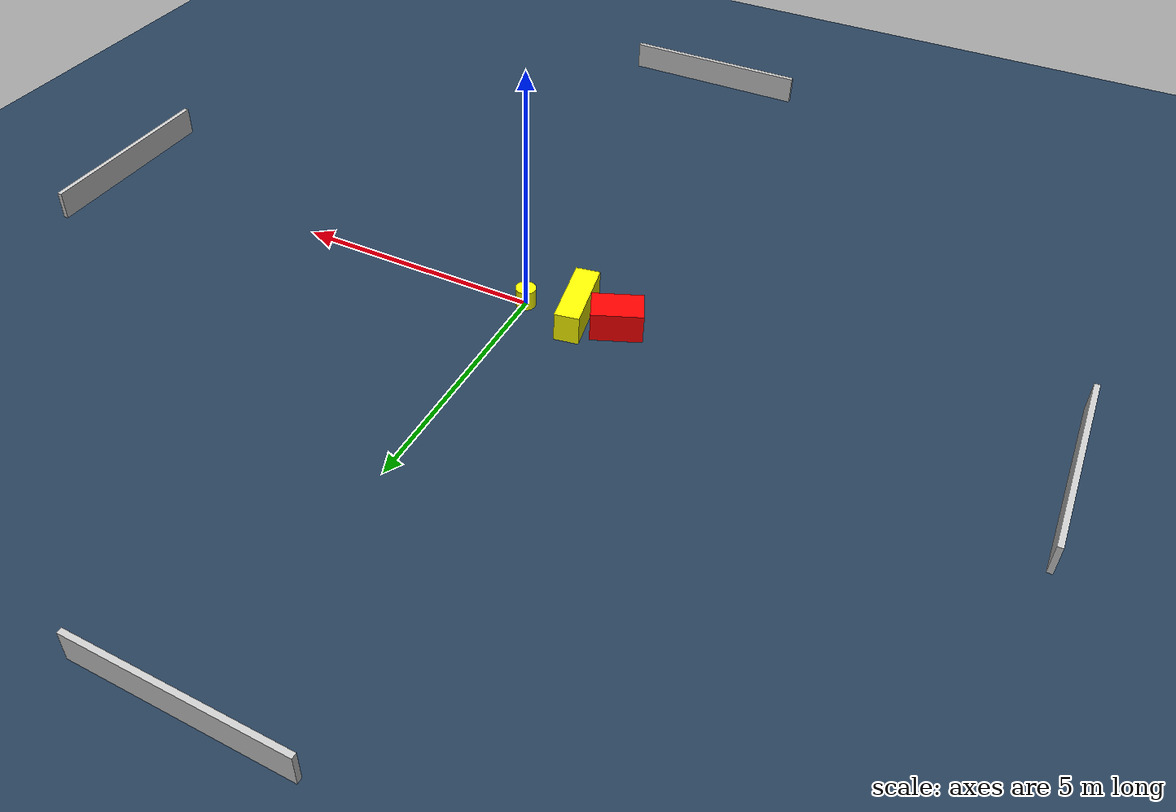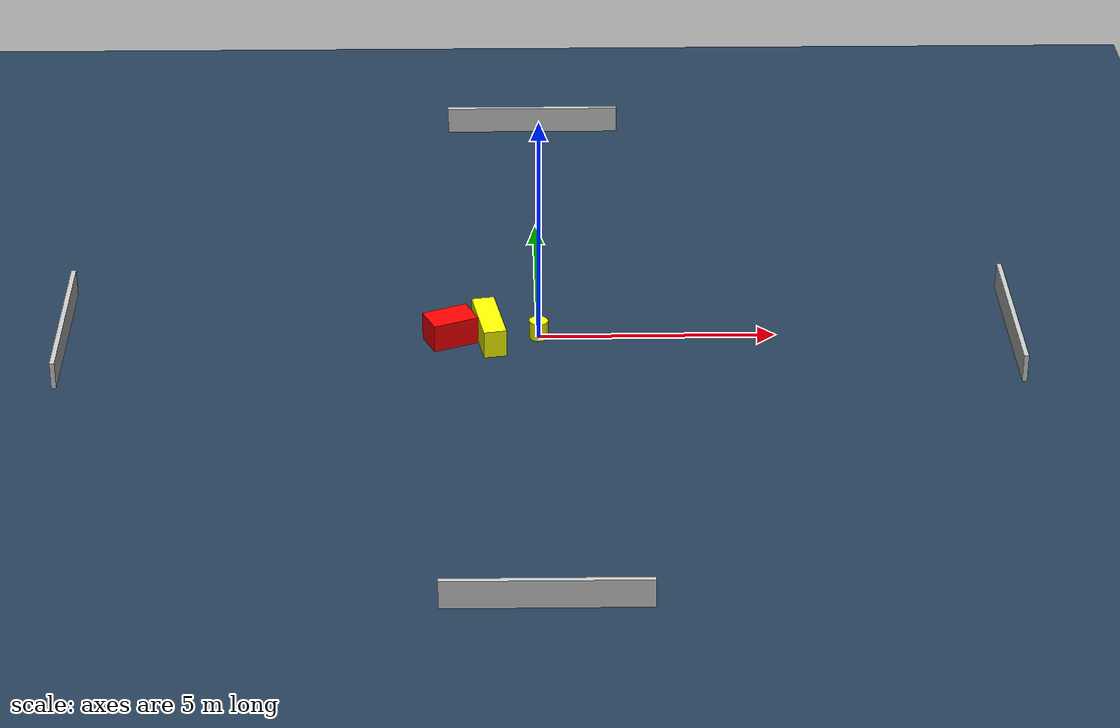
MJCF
<?xml version="1.0" ?>
<mujoco model="generated_environment">
  <option timestep="0.01" integrator="RK4" cone="elliptic"/>
  <default>
    <geom density="1"/>
  </default>
  <asset>
    <texture builtin="gradient" height="3072" name="skybox" rgb1="0.3 0.5 0.7" rgb2="0 0 0" type="skybox" width="512"/>
    <texture builtin="checker" height="300" name="groundplane" rgb1="0.2 0.3 0.4" rgb2="0.1 0.2 0.3" type="2d" width="300"/>
    <material name="groundplane" reflectance="0.2" texrepeat="5 5" texture="groundplane"/>
  </asset>
  <worldbody>
    <light dir="0 0 -1" directional="true" pos="0 0 1.5"/>
    <geom condim="3" friction="0.5 0.005 0.001" material="groundplane" name="floor" pos="0 0 0" size="0 0 0.05" type="plane"/>
    <body name="walls">
      <geom name="wall_1" condim="4" pos="-10.0 0.0 0.3" rgba="0.800000011920929 0.800000011920929 0.800000011920929 1.0" size="0.05 2.0 0.3" type="box"/>
      <geom name="wall_2" condim="4" pos="10.0 0.0 0.3" rgba="0.800000011920929 0.800000011920929 0.800000011920929 1.0" size="0.05 2.0 0.3" type="box"/>
      <geom name="wall_3" condim="4" pos="0.0 -10.0 0.3" rgba="0.800000011920929 0.800000011920929 0.800000011920929 1.0" size="2.0 0.05 0.3" type="box"/>
      <geom name="wall_4" condim="4" pos="0.0 10.0 0.3" rgba="0.800000011920929 0.800000011920929 0.800000011920929 1.0" size="2.0 0.05 0.3" type="box"/>
    </body>
    <body name="robot">
      <joint name="joint_x" type="slide" pos="0 0 0" axis="1 0 0"/>
      <joint name="joint_y" type="slide" pos="0 0 0" axis="0 1 0"/>
      <geom name="robot" type="cylinder" pos="0.0 0.0 0.2" size="0.2 0.2 0.0" mass="5.0" friction="1.0 0.005 0.0001" condim="4" rgba="1.0 1.0 0.0 1.0"/>
    </body>
    <body name="obstacle_1_movable">
      <geom name="obstacle_1_movable" condim="4" pos="-1.0478668453115703 -0.09371028286987351 0.3" euler="0 0 280.02012640111093" friction="0.0 0.005 0.001" rgba="1.0 1.0 0.0 1.0" size="0.744053652607396 0.24048451760856732 0.3" type="box" mass="0.1"/>
      <joint type="free"/>
    </body>
    <body name="obstacle_2_static">
      <geom name="obstacle_2_static" condim="4" pos="-1.862342415378427 -0.10980899279604293 0.3" euler="0 0 113.15904120790553" friction="0.0 0.005 0.001" rgba="1.0 0.0 0.0 1.0" size="0.3295673648933759 0.49537264726203284 0.3" type="box"/>
    </body>
  </worldbody>
  <actuator>
    <motor name="actuator_x" joint="joint_x" gear="1" ctrlrange="-1 1"/>
    <motor name="actuator_y" joint="joint_y" gear="1" ctrlrange="-1 1"/>
  </actuator>
</mujoco>
